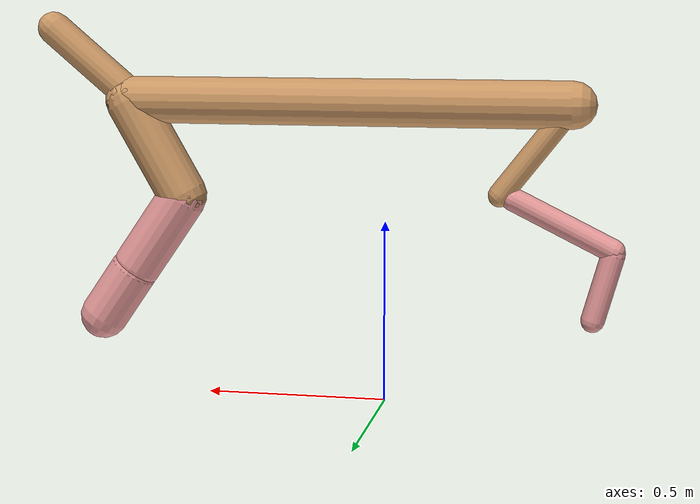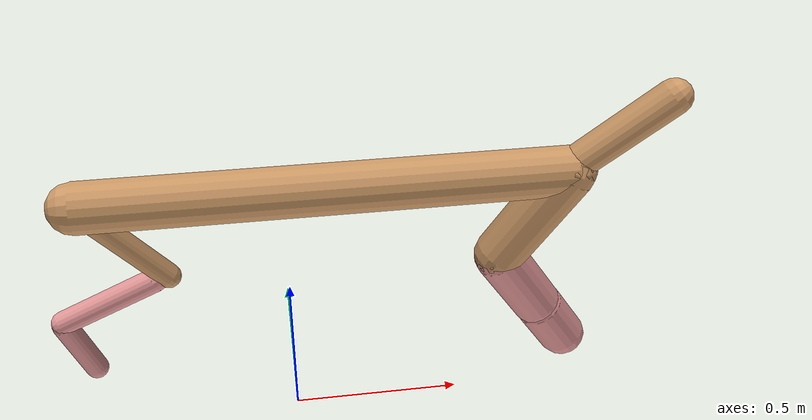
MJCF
<mujoco model="cheetah">
  <compiler angle="radian" coordinate="local" inertiafromgeom="true" settotalmass="14" />
  <default>
    <joint armature=".1" damping=".01" limited="true" solimplimit="0 .8 .03" solreflimit=".02 1" stiffness="8" />
    <geom conaffinity="0" condim="3" contype="1" friction="0.8 .1 .1" rgba="0.8 0.6 .4 1" solimp="0.0 0.8 0.01" solref="0.02 1" />
    <motor ctrllimited="true" ctrlrange="-1 1" />
  </default>
  <size nstack="300000" nuser_geom="1" />
  <option gravity="0 0 -9.81" timestep="0.01" />
  <worldbody>
    <body name="torso" pos="0.0 0.0 0.8256434654855446">
      <joint armature="0" axis="1 0 0" damping="0" limited="false" name="ignorex" pos="0 0 0" stiffness="0" type="slide" />
      <joint armature="0" axis="0 0 1" damping="0" limited="false" name="ignorez" pos="0 0 0" stiffness="0" type="slide" />
      <joint armature="0" axis="0 1 0" damping="0" limited="false" name="ignorey" pos="0 0 0" stiffness="0" type="hinge" />
      <geom fromto="-0.5 0.0 0.0 0.72743568826243 0.0 0.0" name="torso" size="0.06491029355719996" type="capsule" />
      <geom axisangle="0 1 0 .87" name="head" pos="0.82743568826243 0.0 0.1" size="0.04574200726945582 0.15" type="capsule" />

      <body name="bthigh" pos="-.5 0 0">
        <joint axis="0 1 0" damping="6" name="bthigh" pos="0 0 0" range="-.52 1.05" stiffness="240" type="hinge" />
        <geom axisangle="0 1 0 -3.8" name="bthigh" pos="0.10002472853513884 0.0 -0.1300321470956805" size="0.0322 0.1450405578131906" type="capsule" />
        <body name="bshin" pos="0.16004945707027768 0.0 -0.250064294191361">
          <joint axis="0 1 0" damping="4.5" name="bshin" pos="0 0 0" range="-.785 .785" stiffness="180" type="hinge" />
          <geom axisangle="0 1 0 -2.03" name="bshin" pos="-0.14003752690785365 0.0 -0.07001876345392682" rgba="0.9 0.6 0.6 1" size="0.0322 0.15004195635847303" type="capsule" />
          <body name="bfoot" pos="-0.2800750538157073 0.0 -0.14003752690785365">
            <joint axis="0 1 0" damping="3" name="bfoot" pos="0 0 0" range="-.4 .785" stiffness="120" type="hinge" />
            <geom axisangle="0 1 0 -.27" name="bfoot" pos="0.030007768682397382 0.0 -0.09702511873975155" rgba="0.9 0.6 0.6 1" size="0.0322 0.09402629265130978" type="capsule" />
            <inertial mass="10" />
          </body>
        </body>
      </body>
      <body name="fthigh" pos="0.72743568826243 0.0 0.0">
        <joint axis="0 1 0" damping="4.5" name="fthigh" pos="0 0 0" range="-1.5 0.8" stiffness="180" type="hinge" />
        <geom axisangle="0 1 0 .52" name="fthigh" pos="-0.07880750788704186 0.0 -0.1350985849492146" size="0.06806501685272967 0.15047968714390947" type="capsule" />
        <body name="fshin" pos="-0.1576150157740837 0.0 -0.2701971698984292">
          <joint axis="0 1 0" damping="3" name="fshin" pos="0 0 0" range="-1.2 1.1" stiffness="120" type="hinge" />
          <geom axisangle="0 1 0 -.6" name="fshin" pos="0.07315657384160036 0.0 -0.10129371762683126" rgba="0.9 0.6 0.6 1" size="0.06806501685272967 0.1199311792274767" type="capsule" />
          <body name="ffoot" pos="0.14631314768320072 0.0 -0.20258743525366252">
            <joint axis="0 1 0" damping="1.5" name="ffoot" pos="0 0 0" range="-3.1 -0.3" stiffness="60" type="hinge" />
            <geom axisangle="0 1 0 -.6" name="ffoot" pos="0.04997488079834421 0.0 -0.07773870346409101" rgba="0.9 0.6 0.6 1" size="0.06806501685272967 0.07919983533889971" type="capsule" />
            <inertial mass="10" />
          </body>
        </body>
      </body>
    </body>
  </worldbody>
  <actuator>
    <motor gear="120" joint="bthigh" name="bthigh" />
    <motor gear="90" joint="bshin" name="bshin" />
    <motor gear="60" joint="bfoot" name="bfoot" />
    <motor gear="120" joint="fthigh" name="fthigh" />
    <motor gear="60" joint="fshin" name="fshin" />
    <motor gear="30" joint="ffoot" name="ffoot" />
  </actuator>
</mujoco>
